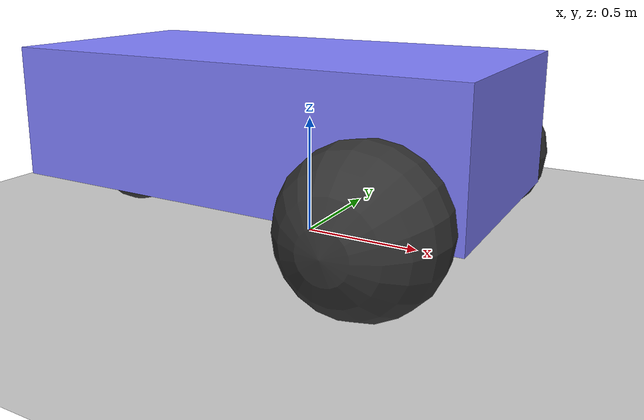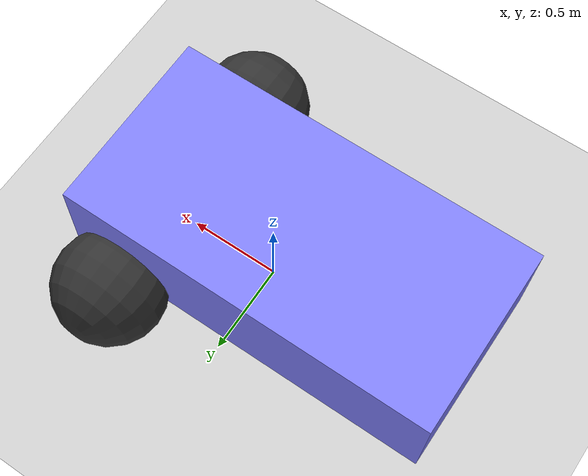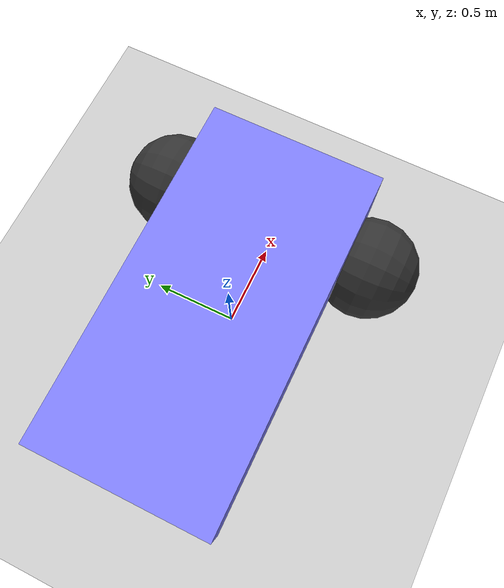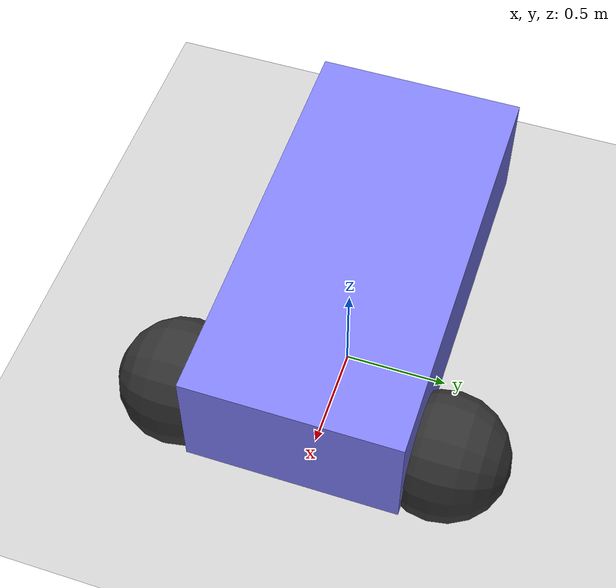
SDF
<?xml version="1.0" ?>
<sdf version="1.8">
  <world name="vehicle2">

    <light name="sun" type="directional">
      <cast_shadows>true</cast_shadows>
      <pose>0 0 10 0 0 0</pose>
      <diffuse>0.8 0.8 0.8 1</diffuse>
      <specular>0.2 0.2 0.2 1</specular>
      <attenuation>
        <range>1000</range>
        <constant>0.9</constant>
        <linear>0.01</linear>
        <quadratic>0.001</quadratic>
      </attenuation>
      <direction>-0.5 0.1 -0.9</direction>
    </light>

    <model name="ground_plane">
      <static>true</static>
      <link name="link">
        <collision name="collision">
          <geometry>
            <plane>
              <normal>0 0 1</normal>
              <size>100 100</size>
            </plane>
          </geometry>
        </collision>
        <visual name="visual">
          <geometry>
            <plane>
              <normal>0 0 1</normal>
              <size>100 100</size>
            </plane>
          </geometry>
          <material>
            <ambient>0.8 0.8 0.8 1</ambient>
            <diffuse>0.8 0.8 0.8 1</diffuse>
            <specular>0.8 0.8 0.8 1</specular>
          </material>
        </visual>
      </link>
    </model>

    <include>
      <name>vehicle2</name>
      <uri>model://vehicle2</uri>
      <!-- z=0.325 positions wheels flush with ground (wheel centres at z=-0.025,
           radius 0.3 → bottom at z=-0.325 in model frame, so +0.325 offset) -->
      <pose>0 0 0.325 0 0 0</pose>
    </include>

  </world>
</sdf>

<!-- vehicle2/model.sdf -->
<sdf version="1.8">
    <model name='vehicle2'>
      <link name='chassis'>
        <pose>-0.151427 -0 0.175 0 -0 0</pose>
        <inertial>
          <mass>1.14395</mass>
          <inertia>
            <ixx>0.126164</ixx>
            <ixy>0</ixy>
            <ixz>0</ixz>
            <iyy>0.416519</iyy>
            <iyz>0</iyz>
            <izz>0.481014</izz>
          </inertia>
        </inertial>
        <visual name='visual_chassis'>
          <geometry>
            <box>
              <size>2.01142 1 0.568726</size>
            </box>
          </geometry>
          <material>
            <ambient>0.5 0.5 1.0 1</ambient>
            <diffuse>0.5 0.5 1.0 1</diffuse>
            <specular>0.0 0.0 1.0 1</specular>
          </material>
        </visual>
        <collision name='collision_chassis'>
          <geometry>
            <box>
              <size>2.01142 1 0.568726</size>
            </box>
          </geometry>
        </collision>
      </link>

      <link name='left_wheel'>
        <pose>0.554283 0.625029 -0.025 -1.5707 0 0</pose>
        <inertial>
          <mass>2</mass>
          <inertia>
            <ixx>0.145833</ixx>
            <ixy>0</ixy>
            <ixz>0</ixz>
            <iyy>0.145833</iyy>
            <iyz>0</iyz>
            <izz>0.125</izz>
          </inertia>
        </inertial>
        <visual name='visual_left_wheel'>
          <geometry>
            <sphere>
              <radius>0.3</radius>
            </sphere>
          </geometry>
          <material>
            <ambient>0.2 0.2 0.2 1</ambient>
            <diffuse>0.2 0.2 0.2 1</diffuse>
            <specular>0.2 0.2 0.2 1</specular>
          </material>
        </visual>
        <collision name='collision_left_wheel'>
          <geometry>
            <sphere>
              <radius>0.3</radius>
            </sphere>
          </geometry>
        </collision>
      </link>

      <link name='right_wheel'>
        <pose>0.554282 -0.625029 -0.025 -1.5707 0 0</pose>
        <inertial>
          <mass>2</mass>
          <inertia>
            <ixx>0.145833</ixx>
            <ixy>0</ixy>
            <ixz>0</ixz>
            <iyy>0.145833</iyy>
            <iyz>0</iyz>
            <izz>0.125</izz>
          </inertia>
        </inertial>
        <visual name='visual_right_wheel'>
          <geometry>
            <sphere>
              <radius>0.3</radius>
            </sphere>
          </geometry>
          <material>
            <ambient>0.2 0.2 0.2 1</ambient>
            <diffuse>0.2 0.2 0.2 1</diffuse>
            <specular>0.2 0.2 0.2 1</specular>
          </material>
        </visual>
        <collision name='collision_right_wheel'>
          <geometry>
            <sphere>
              <radius>0.3</radius>
            </sphere>
          </geometry>
        </collision>
      </link>

      <link name='caster'>
        <pose>-0.957138 -0 -0.125 0 -0 0</pose>
        <inertial>
          <mass>1</mass>
          <inertia>
            <ixx>0.1</ixx>
            <ixy>0</ixy>
            <ixz>0</ixz>
            <iyy>0.1</iyy>
            <iyz>0</iyz>
            <izz>0.1</izz>
          </inertia>
        </inertial>
        <visual name='visual_caster'>
          <geometry>
            <sphere>
              <radius>0.2</radius>
            </sphere>
          </geometry>
          <material>
            <ambient>0.2 0.2 0.2 1</ambient>
            <diffuse>0.2 0.2 0.2 1</diffuse>
            <specular>0.2 0.2 0.2 1</specular>
          </material>
        </visual>
        <collision name='collision_caster'>
          <geometry>
            <sphere>
              <radius>0.2</radius>
            </sphere>
          </geometry>
        </collision>
      </link>

      <joint name='left_wheel_joint' type='revolute'>
        <parent>chassis</parent>
        <child>left_wheel</child>
        <axis>
          <xyz>0 0 1</xyz>
          <limit>
            <lower>-1.79769e+308</lower>
            <upper>1.79769e+308</upper>
            <effort>100</effort>
            <velocity>100</velocity>
          </limit>
        </axis>
      </joint>

      <joint name='right_wheel_joint' type='revolute'>
        <parent>chassis</parent>
        <child>right_wheel</child>
        <axis>
          <xyz>0 0 1</xyz>
          <limit>
            <lower>-1.79769e+308</lower>
            <upper>1.79769e+308</upper>
            <effort>100</effort>
            <velocity>100</velocity>
          </limit>
        </axis>
      </joint>

      <joint name='caster_wheel' type='ball'>
        <parent>chassis</parent>
        <child>caster</child>
      </joint>

      <plugin
        filename="gz-sim-joint-state-publisher-system"
        name="gz::sim::systems::JointStatePublisher">
      </plugin>

      <plugin
        filename="gz-sim-pose-publisher-system"
        name="gz::sim::systems::PosePublisher">
        <publish_link_pose>true</publish_link_pose>
        <use_pose_vector_msg>true</use_pose_vector_msg>
        <static_publisher>true</static_publisher>
        <static_update_frequency>1</static_update_frequency>
      </plugin>

      <plugin
        filename="ignition-gazebo-odometry-publisher-system"
        name="ignition::gazebo::systems::OdometryPublisher">
        <odom_frame>odom</odom_frame>
        <robot_base_frame>vehicle2</robot_base_frame>
      </plugin>

      <plugin
        filename="ignition-gazebo-diff-drive-system"
        name="ignition::gazebo::systems::DiffDrive">
        <left_joint>left_wheel_joint</left_joint>
        <right_joint>right_wheel_joint</right_joint>
        <wheel_separation>1.25</wheel_separation>
        <wheel_radius>0.3</wheel_radius>
        <odom_publish_frequency>1</odom_publish_frequency>
        <max_linear_acceleration>1</max_linear_acceleration>
        <min_linear_acceleration>-1</min_linear_acceleration>
        <max_angular_acceleration>2</max_angular_acceleration>
        <min_angular_acceleration>-2</min_angular_acceleration>
        <max_linear_velocity>5.0</max_linear_velocity>
        <min_linear_velocity>-5.0</min_linear_velocity>
        <max_angular_velocity>2</max_angular_velocity>
        <min_angular_velocity>-2</min_angular_velocity>
      </plugin>

    </model>
</sdf>
